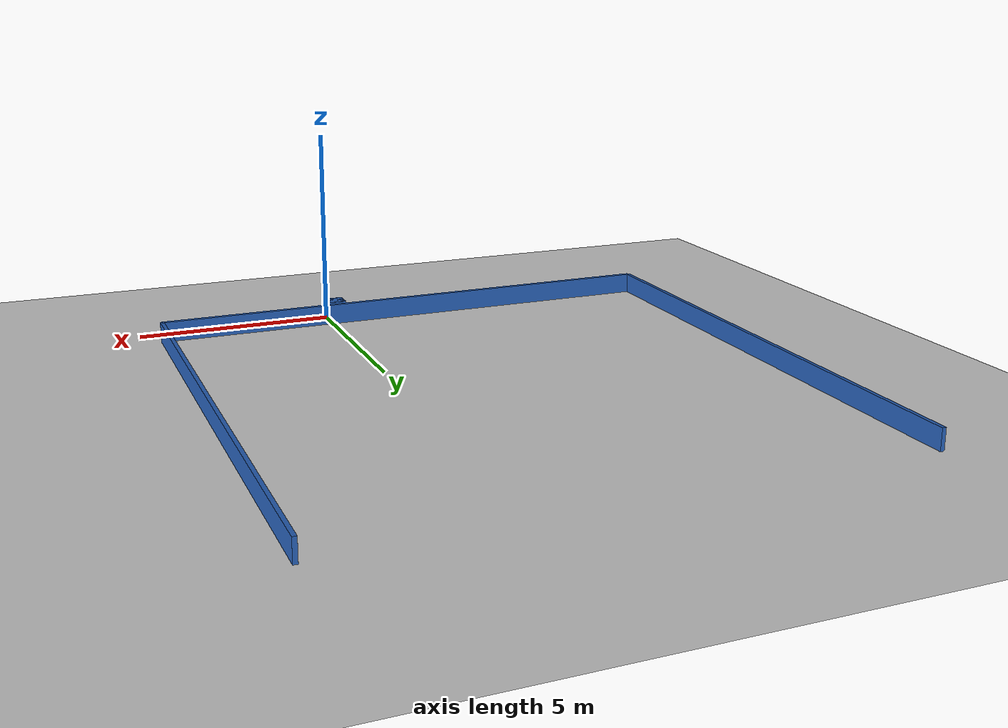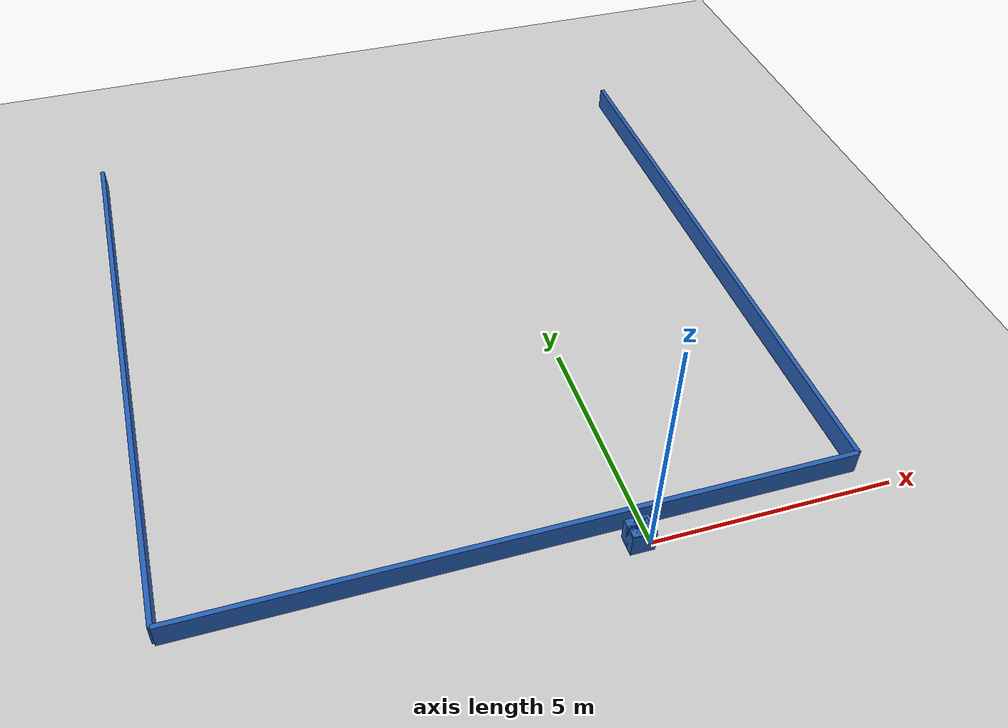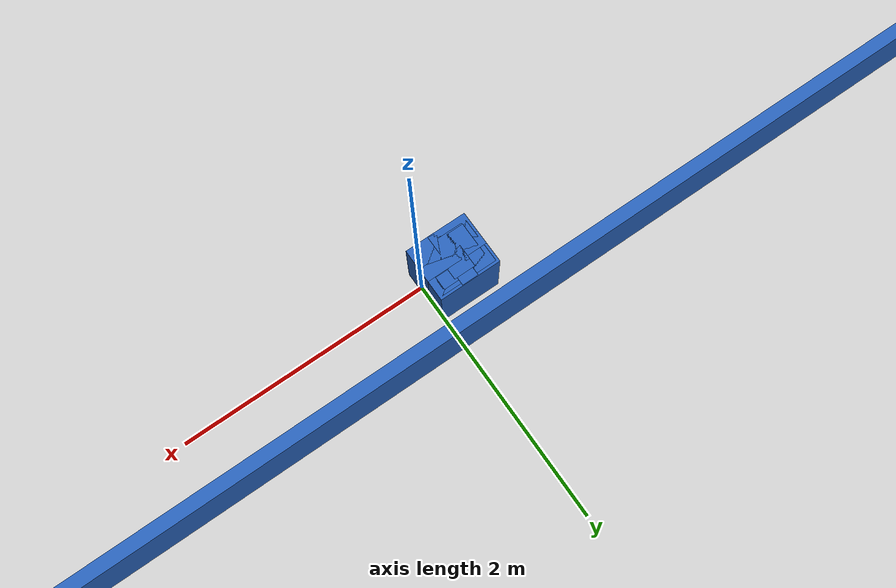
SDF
<?xml version="1.0" ?>
    <sdf version="1.5">
      <world name="default">
        <!-- A global light source -->
        <include>
          <uri>model://sun</uri>
        </include>
        <!-- A ground plane -->
        <include>
          <uri>model://ground_plane</uri>
        </include>

    <model name='libopen_space_final_T2B_52_73'>
      <static>1</static>
      <pose frame=''>-0.225000 0.075000 0.000000 0.000000 0.000000 0.000000</pose>
      <link name='link'>
        <inertial>
          <mass>1</mass>
          <inertia>
            <ixx>0.145833</ixx>
            <ixy>0</ixy>
            <ixz>0</ixz>
            <iyy>0.145833</iyy>
            <iyz>0</iyz>
            <izz>0.125</izz>
          </inertia>
        </inertial>
        <collision name='collision'>
          <geometry>
            <box>
              <size>0.35 0.12 1</size>
            </box>
          </geometry>
          <max_contacts>10</max_contacts>
          <surface>
            <contact>
              <ode/>
            </contact>
            <bounce/>
            <friction>
              <torsional>
                <ode/>
              </torsional>
              <ode/>
            </friction>
          </surface>
        </collision>
        <visual name='visual'>
          <geometry>
            <box>
              <size>0.35 0.12 1</size>
            </box>
          </geometry>
	    <material>
              <ambient>0.152000 0.379000 0.720000 1</ambient>
	      <diffuse>0.152000 0.379000 0.720000 1</diffuse>
          </material>
          <material>
            <script>
              <name>Gazebo/Grey</name>
              <uri>file://media/materials/scripts/gazebo.material</uri>
            </script>
          </material>
        </visual>
        <self_collide>0</self_collide>
        <kinematic>0</kinematic>
        <gravity>1</gravity>
      </link>
      <plugin name='libopen_space_final_T2B_52_73' filename='libopen_space_final_T2B_52_73.so'/>
    </model>

    <model name='libopen_space_final_T2B_123_13'>
      <static>1</static>
      <pose frame=''>-0.225000 0.075000 0.000000 0.000000 0.000000 0.000000</pose>
      <link name='link'>
        <inertial>
          <mass>1</mass>
          <inertia>
            <ixx>0.145833</ixx>
            <ixy>0</ixy>
            <ixz>0</ixz>
            <iyy>0.145833</iyy>
            <iyz>0</iyz>
            <izz>0.125</izz>
          </inertia>
        </inertial>
        <collision name='collision'>
          <geometry>
            <box>
              <size>0.49 0.43 1</size>
            </box>
          </geometry>
          <max_contacts>10</max_contacts>
          <surface>
            <contact>
              <ode/>
            </contact>
            <bounce/>
            <friction>
              <torsional>
                <ode/>
              </torsional>
              <ode/>
            </friction>
          </surface>
        </collision>
        <visual name='visual'>
          <geometry>
            <box>
              <size>0.49 0.43 1</size>
            </box>
          </geometry>
	    <material>
              <ambient>0.152000 0.379000 0.720000 1</ambient>
	      <diffuse>0.152000 0.379000 0.720000 1</diffuse>
          </material>
          <material>
            <script>
              <name>Gazebo/Grey</name>
              <uri>file://media/materials/scripts/gazebo.material</uri>
            </script>
          </material>
        </visual>
        <self_collide>0</self_collide>
        <kinematic>0</kinematic>
        <gravity>1</gravity>
      </link>
      <plugin name='libopen_space_final_T2B_123_13' filename='libopen_space_final_T2B_123_13.so'/>
    </model>

    <model name='libopen_space_final_T2B_51_19'>
      <static>1</static>
      <pose frame=''>-0.225000 0.075000 0.000000 0.000000 0.000000 0.000000</pose>
      <link name='link'>
        <inertial>
          <mass>1</mass>
          <inertia>
            <ixx>0.145833</ixx>
            <ixy>0</ixy>
            <ixz>0</ixz>
            <iyy>0.145833</iyy>
            <iyz>0</iyz>
            <izz>0.125</izz>
          </inertia>
        </inertial>
        <collision name='collision'>
          <geometry>
            <box>
              <size>0.17 0.16 1</size>
            </box>
          </geometry>
          <max_contacts>10</max_contacts>
          <surface>
            <contact>
              <ode/>
            </contact>
            <bounce/>
            <friction>
              <torsional>
                <ode/>
              </torsional>
              <ode/>
            </friction>
          </surface>
        </collision>
        <visual name='visual'>
          <geometry>
            <box>
              <size>0.17 0.16 1</size>
            </box>
          </geometry>
	    <material>
              <ambient>0.152000 0.379000 0.720000 1</ambient>
	      <diffuse>0.152000 0.379000 0.720000 1</diffuse>
          </material>
          <material>
            <script>
              <name>Gazebo/Grey</name>
              <uri>file://media/materials/scripts/gazebo.material</uri>
            </script>
          </material>
        </visual>
        <self_collide>0</self_collide>
        <kinematic>0</kinematic>
        <gravity>1</gravity>
      </link>
      <plugin name='libopen_space_final_T2B_51_19' filename='libopen_space_final_T2B_51_19.so'/>
    </model>

    <model name='libopen_space_final_T2B_114_22'>
      <static>1</static>
      <pose frame=''>-0.225000 0.075000 0.000000 0.000000 0.000000 0.000000</pose>
      <link name='link'>
        <inertial>
          <mass>1</mass>
          <inertia>
            <ixx>0.145833</ixx>
            <ixy>0</ixy>
            <ixz>0</ixz>
            <iyy>0.145833</iyy>
            <iyz>0</iyz>
            <izz>0.125</izz>
          </inertia>
        </inertial>
        <collision name='collision'>
          <geometry>
            <box>
              <size>0.17 0.29 1</size>
            </box>
          </geometry>
          <max_contacts>10</max_contacts>
          <surface>
            <contact>
              <ode/>
            </contact>
            <bounce/>
            <friction>
              <torsional>
                <ode/>
              </torsional>
              <ode/>
            </friction>
          </surface>
        </collision>
        <visual name='visual'>
          <geometry>
            <box>
              <size>0.17 0.29 1</size>
            </box>
          </geometry>
	    <material>
              <ambient>0.152000 0.379000 0.720000 1</ambient>
	      <diffuse>0.152000 0.379000 0.720000 1</diffuse>
          </material>
          <material>
            <script>
              <name>Gazebo/Grey</name>
              <uri>file://media/materials/scripts/gazebo.material</uri>
            </script>
          </material>
        </visual>
        <self_collide>0</self_collide>
        <kinematic>0</kinematic>
        <gravity>1</gravity>
      </link>
      <plugin name='libopen_space_final_T2B_114_22' filename='libopen_space_final_T2B_114_22.so'/>
    </model>

    <model name='libopen_space_final_T2B_91_57'>
      <static>1</static>
      <pose frame=''>-0.225000 0.075000 0.000000 0.000000 0.000000 0.000000</pose>
      <link name='link'>
        <inertial>
          <mass>1</mass>
          <inertia>
            <ixx>0.145833</ixx>
            <ixy>0</ixy>
            <ixz>0</ixz>
            <iyy>0.145833</iyy>
            <iyz>0</iyz>
            <izz>0.125</izz>
          </inertia>
        </inertial>
        <collision name='collision'>
          <geometry>
            <box>
              <size>0.17 0.16 1</size>
            </box>
          </geometry>
          <max_contacts>10</max_contacts>
          <surface>
            <contact>
              <ode/>
            </contact>
            <bounce/>
            <friction>
              <torsional>
                <ode/>
              </torsional>
              <ode/>
            </friction>
          </surface>
        </collision>
        <visual name='visual'>
          <geometry>
            <box>
              <size>0.17 0.16 1</size>
            </box>
          </geometry>
	    <material>
              <ambient>0.152000 0.379000 0.720000 1</ambient>
	      <diffuse>0.152000 0.379000 0.720000 1</diffuse>
          </material>
          <material>
            <script>
              <name>Gazebo/Grey</name>
              <uri>file://media/materials/scripts/gazebo.material</uri>
            </script>
          </material>
        </visual>
        <self_collide>0</self_collide>
        <kinematic>0</kinematic>
        <gravity>1</gravity>
      </link>
      <plugin name='libopen_space_final_T2B_91_57' filename='libopen_space_final_T2B_91_57.so'/>
    </model>

    <model name='libopen_space_final_T2B_92_34'>
      <static>1</static>
      <pose frame=''>-0.225000 0.075000 0.000000 0.000000 0.000000 0.000000</pose>
      <link name='link'>
        <inertial>
          <mass>1</mass>
          <inertia>
            <ixx>0.145833</ixx>
            <ixy>0</ixy>
            <ixz>0</ixz>
            <iyy>0.145833</iyy>
            <iyz>0</iyz>
            <izz>0.125</izz>
          </inertia>
        </inertial>
        <collision name='collision'>
          <geometry>
            <box>
              <size>0.37 0.33 1</size>
            </box>
          </geometry>
          <max_contacts>10</max_contacts>
          <surface>
            <contact>
              <ode/>
            </contact>
            <bounce/>
            <friction>
              <torsional>
                <ode/>
              </torsional>
              <ode/>
            </friction>
          </surface>
        </collision>
        <visual name='visual'>
          <geometry>
            <box>
              <size>0.37 0.33 1</size>
            </box>
          </geometry>
	    <material>
              <ambient>0.152000 0.379000 0.720000 1</ambient>
	      <diffuse>0.152000 0.379000 0.720000 1</diffuse>
          </material>
          <material>
            <script>
              <name>Gazebo/Grey</name>
              <uri>file://media/materials/scripts/gazebo.material</uri>
            </script>
          </material>
        </visual>
        <self_collide>0</self_collide>
        <kinematic>0</kinematic>
        <gravity>1</gravity>
      </link>
      <plugin name='libopen_space_final_T2B_92_34' filename='libopen_space_final_T2B_92_34.so'/>
    </model>

    <model name='libopen_space_final_T2B_105_38'>
      <static>1</static>
      <pose frame=''>-0.225000 0.075000 0.000000 0.000000 0.000000 0.000000</pose>
      <link name='link'>
        <inertial>
          <mass>1</mass>
          <inertia>
            <ixx>0.145833</ixx>
            <ixy>0</ixy>
            <ixz>0</ixz>
            <iyy>0.145833</iyy>
            <iyz>0</iyz>
            <izz>0.125</izz>
          </inertia>
        </inertial>
        <collision name='collision'>
          <geometry>
            <box>
              <size>0.38 0.31 1</size>
            </box>
          </geometry>
          <max_contacts>10</max_contacts>
          <surface>
            <contact>
              <ode/>
            </contact>
            <bounce/>
            <friction>
              <torsional>
                <ode/>
              </torsional>
              <ode/>
            </friction>
          </surface>
        </collision>
        <visual name='visual'>
          <geometry>
            <box>
              <size>0.38 0.31 1</size>
            </box>
          </geometry>
	    <material>
              <ambient>0.152000 0.379000 0.720000 1</ambient>
	      <diffuse>0.152000 0.379000 0.720000 1</diffuse>
          </material>
          <material>
            <script>
              <name>Gazebo/Grey</name>
              <uri>file://media/materials/scripts/gazebo.material</uri>
            </script>
          </material>
        </visual>
        <self_collide>0</self_collide>
        <kinematic>0</kinematic>
        <gravity>1</gravity>
      </link>
      <plugin name='libopen_space_final_T2B_105_38' filename='libopen_space_final_T2B_105_38.so'/>
    </model>

    <model name='libopen_space_final_T2B_115_16'>
      <static>1</static>
      <pose frame=''>-0.225000 0.075000 0.000000 0.000000 0.000000 0.000000</pose>
      <link name='link'>
        <inertial>
          <mass>1</mass>
          <inertia>
            <ixx>0.145833</ixx>
            <ixy>0</ixy>
            <ixz>0</ixz>
            <iyy>0.145833</iyy>
            <iyz>0</iyz>
            <izz>0.125</izz>
          </inertia>
        </inertial>
        <collision name='collision'>
          <geometry>
            <box>
              <size>0.45 0.39 1</size>
            </box>
          </geometry>
          <max_contacts>10</max_contacts>
          <surface>
            <contact>
              <ode/>
            </contact>
            <bounce/>
            <friction>
              <torsional>
                <ode/>
              </torsional>
              <ode/>
            </friction>
          </surface>
        </collision>
        <visual name='visual'>
          <geometry>
            <box>
              <size>0.45 0.39 1</size>
            </box>
          </geometry>
	    <material>
              <ambient>0.152000 0.379000 0.720000 1</ambient>
	      <diffuse>0.152000 0.379000 0.720000 1</diffuse>
          </material>
          <material>
            <script>
              <name>Gazebo/Grey</name>
              <uri>file://media/materials/scripts/gazebo.material</uri>
            </script>
          </material>
        </visual>
        <self_collide>0</self_collide>
        <kinematic>0</kinematic>
        <gravity>1</gravity>
      </link>
      <plugin name='libopen_space_final_T2B_115_16' filename='libopen_space_final_T2B_115_16.so'/>
    </model>

    <model name='libopen_space_final_T2B_105_8'>
      <static>1</static>
      <pose frame=''>-0.225000 0.075000 0.000000 0.000000 0.000000 0.000000</pose>
      <link name='link'>
        <inertial>
          <mass>1</mass>
          <inertia>
            <ixx>0.145833</ixx>
            <ixy>0</ixy>
            <ixz>0</ixz>
            <iyy>0.145833</iyy>
            <iyz>0</iyz>
            <izz>0.125</izz>
          </inertia>
        </inertial>
        <collision name='collision'>
          <geometry>
            <box>
              <size>0.49 0.11 1</size>
            </box>
          </geometry>
          <max_contacts>10</max_contacts>
          <surface>
            <contact>
              <ode/>
            </contact>
            <bounce/>
            <friction>
              <torsional>
                <ode/>
              </torsional>
              <ode/>
            </friction>
          </surface>
        </collision>
        <visual name='visual'>
          <geometry>
            <box>
              <size>0.49 0.11 1</size>
            </box>
          </geometry>
	    <material>
              <ambient>0.152000 0.379000 0.720000 1</ambient>
	      <diffuse>0.152000 0.379000 0.720000 1</diffuse>
          </material>
          <material>
            <script>
              <name>Gazebo/Grey</name>
              <uri>file://media/materials/scripts/gazebo.material</uri>
            </script>
          </material>
        </visual>
        <self_collide>0</self_collide>
        <kinematic>0</kinematic>
        <gravity>1</gravity>
      </link>
      <plugin name='libopen_space_final_T2B_105_8' filename='libopen_space_final_T2B_105_8.so'/>
    </model>

    <model name='libopen_space_final_T2B_140_77'>
      <static>1</static>
      <pose frame=''>-0.225000 0.075000 0.000000 0.000000 0.000000 0.000000</pose>
      <link name='link'>
        <inertial>
          <mass>1</mass>
          <inertia>
            <ixx>0.145833</ixx>
            <ixy>0</ixy>
            <ixz>0</ixz>
            <iyy>0.145833</iyy>
            <iyz>0</iyz>
            <izz>0.125</izz>
          </inertia>
        </inertial>
        <collision name='collision'>
          <geometry>
            <box>
              <size>0.13 0.42 1</size>
            </box>
          </geometry>
          <max_contacts>10</max_contacts>
          <surface>
            <contact>
              <ode/>
            </contact>
            <bounce/>
            <friction>
              <torsional>
                <ode/>
              </torsional>
              <ode/>
            </friction>
          </surface>
        </collision>
        <visual name='visual'>
          <geometry>
            <box>
              <size>0.13 0.42 1</size>
            </box>
          </geometry>
	    <material>
              <ambient>0.152000 0.379000 0.720000 1</ambient>
	      <diffuse>0.152000 0.379000 0.720000 1</diffuse>
          </material>
          <material>
            <script>
              <name>Gazebo/Grey</name>
              <uri>file://media/materials/scripts/gazebo.material</uri>
            </script>
          </material>
        </visual>
        <self_collide>0</self_collide>
        <kinematic>0</kinematic>
        <gravity>1</gravity>
      </link>
      <plugin name='libopen_space_final_T2B_140_77' filename='libopen_space_final_T2B_140_77.so'/>
    </model>

        <model name='bottom_wall'>
          <static>1</static>
          <pose frame=''>-2.25 0.5 0.000000 0.000000 0.000000 1.57079632</pose>
          <link name='link'>
            <inertial>
            <mass>1</mass>
            <inertia>
              <ixx>0.145833</ixx>
              <ixy>0</ixy>
              <ixz>0</ixz>
              <iyy>0.145833</iyy>
              <iyz>0</iyz>
              <izz>0.125</izz>
            </inertia>
            </inertial>
            <collision name='collision'>
            <geometry>
              <box>
              <size>0.1 13.5 1</size>
              </box>
            </geometry>
            <max_contacts>10</max_contacts>
            <surface>
              <contact>
              <ode/>
              </contact>
              <bounce/>
              <friction>
              <torsional>
                <ode/>
              </torsional>
              <ode/>
              </friction>
            </surface>
            </collision>
            <visual name='visual'>
            <geometry>
              <box>
              <size>0.1 13.5 1</size>
              </box>
            </geometry>
            <material>
              <ambient>0.152000 0.379000 0.720000 1</ambient>
            <diffuse>0.152000 0.379000 0.720000 1</diffuse>
            </material>
            <material>
              <script>
              <name>Gazebo/Grey</name>
              <uri>file://media/materials/scripts/gazebo.material</uri>
              </script>
            </material>
            </visual>
            <self_collide>0</self_collide>
            <kinematic>0</kinematic>
            <gravity>1</gravity>
          </link>
        </model>

        <model name='left_wall'>
          <static>1</static>
          <pose frame=''>-9 7.25 0.000000 0.000000 0.000000 0.000000</pose>
          <link name='link'>
            <inertial>
            <mass>1</mass>
            <inertia>
              <ixx>0.145833</ixx>
              <ixy>0</ixy>
              <ixz>0</ixz>
              <iyy>0.145833</iyy>
              <iyz>0</iyz>
              <izz>0.125</izz>
            </inertia>
            </inertial>
            <collision name='collision'>
            <geometry>
              <box>
              <size>0.1 13.5 1</size>
              </box>
            </geometry>
            <max_contacts>10</max_contacts>
            <surface>
              <contact>
              <ode/>
              </contact>
              <bounce/>
              <friction>
              <torsional>
                <ode/>
              </torsional>
              <ode/>
              </friction>
            </surface>
            </collision>
            <visual name='visual'>
            <geometry>
              <box>
              <size>0.1 13.5 1</size>
              </box>
            </geometry>
            <material>
              <ambient>0.152000 0.379000 0.720000 1</ambient>
            <diffuse>0.152000 0.379000 0.720000 1</diffuse>
            </material>
            <material>
              <script>
              <name>Gazebo/Grey</name>
              <uri>file://media/materials/scripts/gazebo.material</uri>
              </script>
            </material>
            </visual>
            <self_collide>0</self_collide>
            <kinematic>0</kinematic>
            <gravity>1</gravity>
          </link>
        </model>

        <model name='right_wall'>
          <static>1</static>
          <pose frame=''>4.5 7.25 0.000000 0.000000 0.000000 0.000000</pose>
          <link name='link'>
            <inertial>
            <mass>1</mass>
            <inertia>
              <ixx>0.145833</ixx>
              <ixy>0</ixy>
              <ixz>0</ixz>
              <iyy>0.145833</iyy>
              <iyz>0</iyz>
              <izz>0.125</izz>
            </inertia>
            </inertial>
            <collision name='collision'>
            <geometry>
              <box>
              <size>0.1 13.5 1</size>
              </box>
            </geometry>
            <max_contacts>10</max_contacts>
            <surface>
              <contact>
              <ode/>
              </contact>
              <bounce/>
              <friction>
              <torsional>
                <ode/>
              </torsional>
              <ode/>
              </friction>
            </surface>
            </collision>
            <visual name='visual'>
            <geometry>
              <box>
              <size>0.1 13.5 1</size>
              </box>
            </geometry>
            <material>
              <ambient>0.152000 0.379000 0.720000 1</ambient>
            <diffuse>0.152000 0.379000 0.720000 1</diffuse>
            </material>
            <material>
              <script>
              <name>Gazebo/Grey</name>
              <uri>file://media/materials/scripts/gazebo.material</uri>
              </script>
            </material>
            </visual>
            <self_collide>0</self_collide>
            <kinematic>0</kinematic>
            <gravity>1</gravity>
          </link>
        </model>

      </world>
    </sdf>"
